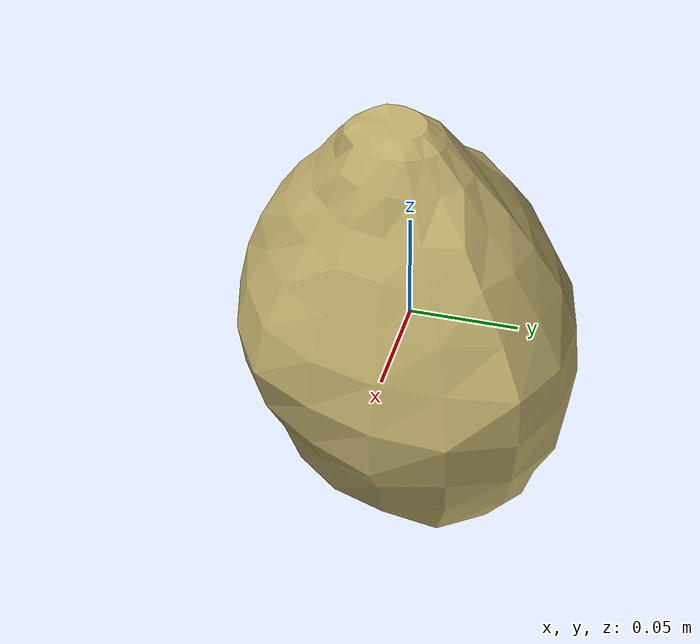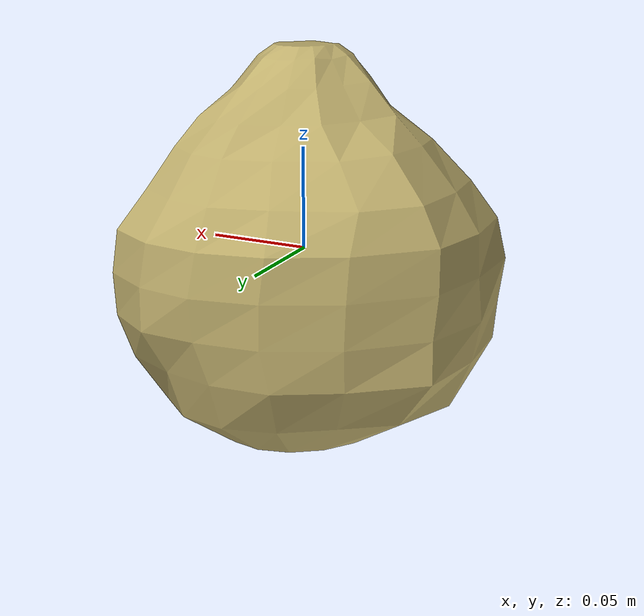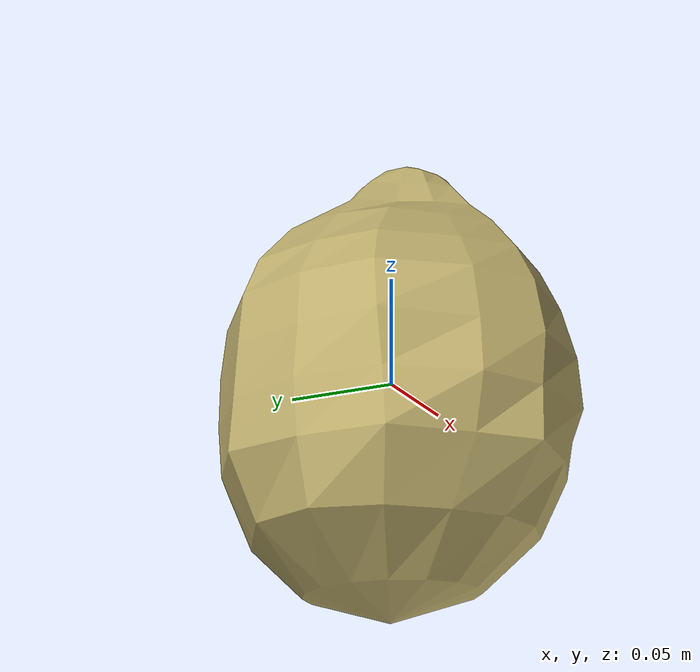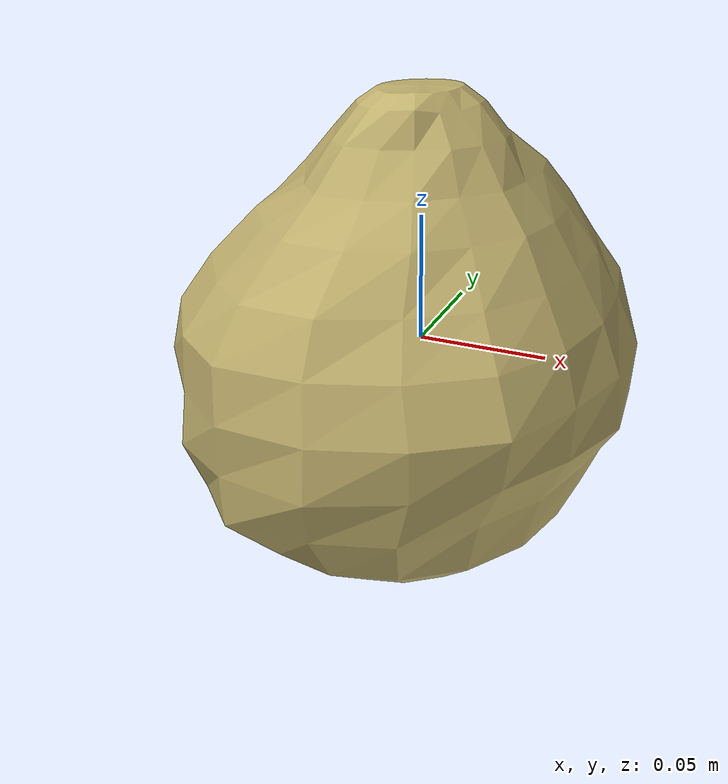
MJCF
<mujoco model="Lettuce_28">
  <compiler autolimits="true" boundmass="0.01" angle="radian"/>
  <default>
    <default class="/">
      <default class="__VISUAL_MJT__">
        <geom contype="0" conaffinity="0" group="0"/>
      </default>
      <default class="__STRUCTURAL_MJT__">
        <geom contype="8" conaffinity="15" group="4" friction="0.90000000000000002 0.90000000000000002 0.001" solref="0.025000000000000001 1" solimp="0.998 0.998 0.001"/>
      </default>
      <default class="__DYNAMIC_MJT__">
        <geom contype="1" conaffinity="15" group="4" friction="0.90000000000000002 0.90000000000000002 0.001" solref="0.025000000000000001 1" solimp="0.998 0.998 0.001"/>
      </default>
    </default>
  </default>
  <asset>
    <texture name="Lettuce3_Mat" type="2d" file="Lettuce3_AlbedoTransparency.png"/>
    <material name="material_Lettuce3_Mat" class="/" texture="Lettuce3_Mat" specular="0.5" shininess="0.5" rgba="1 0.95246359999999997 0.62735850000000004 1"/>
    <mesh name="Lettuce_28_lettuce_c8" class="/" file="Lettuce_28_lettuce_c8/Lettuce_28_lettuce_c8.obj" scale="1 1 1"/>
  </asset>
  <worldbody>
    <body name="Lettuce_28">
      <joint name="Lettuce_28_free" class="/" type="free" pos="0 0 0" axis="0 0 1" stiffness="0" range="0 0" armature="0" damping="0.10000000000000001" frictionloss="0"/>
      <body name="Lettuce_28_lettuce_c8" pos="-0.00232 -0.0044600000000000004 -0.0024599999999999999" quat="1 0 0 0">
        <geom name="Lettuce_28_lettuce_c8" class="__VISUAL_MJT__" type="mesh" material="material_Lettuce3_Mat" shellinertia="true" mesh="Lettuce_28_lettuce_c8"/>
        <geom name="Lettuce_28_PrimitiveCollider_0" class="__DYNAMIC_MJT__" type="capsule" size="0.085806272923946381 0.0049860700964927673" rgba="0 1 0 1" pos="-0.0023180004209280014 0.00445556640625 -0.008899979293346405" quat="9.4400117029050231e-17 0.99847048639095093 -0.055287320483253986 3.469446951953615e-18"/>
        <geom name="Lettuce_28_PrimitiveCollider_1" class="__DYNAMIC_MJT__" type="capsule" size="0.040301479399204254 1.0000000000000001e-05" rgba="0 1 0 1" pos="0.0023417482152581215 -0.0015564756467938423 0.0642823725938797" quat="6.5882561992116723e-17 0.99939870171162004 -0.034673260837832787 0"/>
      </body>
    </body>
  </worldbody>
</mujoco>
